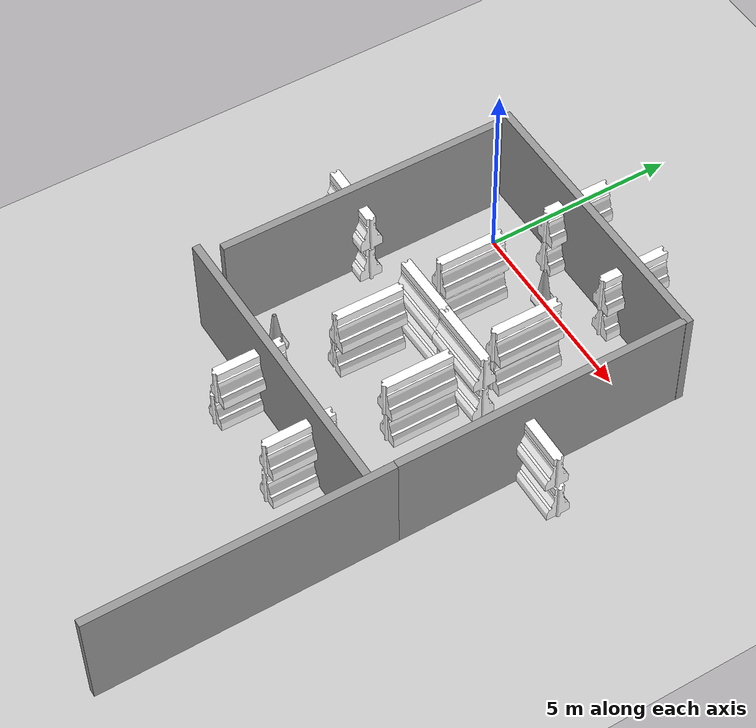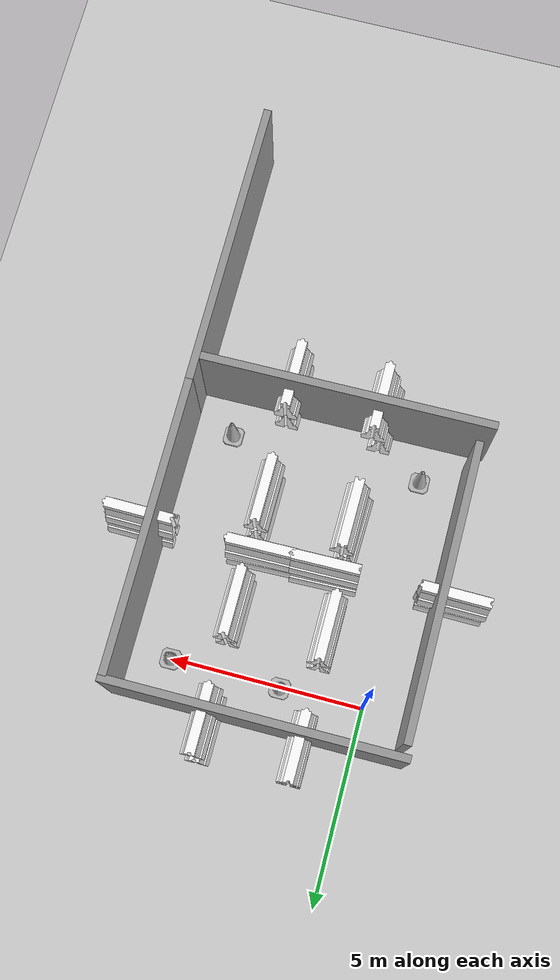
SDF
<sdf version="1.6">
 <world name="vrc_task_1">
  <scene>
   <ambient>0.4 0.4 0.4 1</ambient>
   <background>0.7 0.7 0.7 1</background>
   <shadows>1</shadows>
   <sky><clouds><speed>1</speed></clouds></sky>
  </scene>
  <physics name="default_physics" default="0" type="ode">
   <ode>
    <solver>
     <type>quick</type>
     <iters>10</iters>
     <sor>1</sor>
     <use_dynamic_moi_rescaling>0</use_dynamic_moi_rescaling>
    </solver>
    <constraints>
     <cfm>0</cfm>
     <erp>0.2</erp>
     <contact_max_correcting_vel>100</contact_max_correcting_vel>
     <contact_surface_layer>0.001</contact_surface_layer>
    </constraints>
   </ode>
   <max_step_size>0.004</max_step_size>
   <real_time_factor>1</real_time_factor>
   <real_time_update_rate>250</real_time_update_rate>
  </physics>
  <light name="sun" type="directional">
   <pose>0 0 10 0 -0 0</pose>
   <diffuse>0.8 0.8 0.8 1</diffuse>
   <specular>0.2 0.2 0.2 1</specular>
   <attenuation>
    <range>1000</range>
    <constant>0.9</constant>
    <linear>0.01</linear>
    <quadratic>0.001</quadratic>
   </attenuation>
   <direction>-0.5 0.1 -0.9</direction>
  </light>
  <model name="ground_plane">
   <static>1</static>
   <link name="link">
    <collision name="collision">
     <geometry><plane><normal>0 0 1</normal><size>100 100</size></plane></geometry>
     <surface><friction><ode><mu>100</mu><mu2>50</mu2></ode></friction></surface>
    </collision>
    <visual name="visual">
     <cast_shadows>0</cast_shadows>
     <geometry><plane><normal>0 0 1</normal><size>100 100</size></plane></geometry>
     <material>
      <script><uri>file://media/materials/scripts/gazebo.material</uri><name>Gazebo/Grey</name></script>
     </material>
    </visual>
   </link>
  </model>
  <gravity>0 0 -9.8066</gravity>
  <magnetic_field>6e-06 2.3e-05 -4.2e-05</magnetic_field>
  <atmosphere type="adiabatic"/>
  <spherical_coordinates>
   <surface_model>EARTH_WGS84</surface_model>
   <latitude_deg>0</latitude_deg>
   <longitude_deg>0</longitude_deg>
   <elevation>0</elevation>
   <heading_deg>0</heading_deg>
  </spherical_coordinates>
  <model name="grey_wall">
   <static>1</static>
   <link name="link">
    <pose>0 0 1.4 0 -0 0</pose>
    <collision name="collision"><geometry><box><size>7.5 0.2 2.8</size></box></geometry></collision>
    <visual name="visual">
     <cast_shadows>0</cast_shadows>
     <geometry><box><size>7.5 0.2 2.8</size></box></geometry>
     <material>
      <script>
       <uri>model://grey_wall/materials/scripts</uri>
       <uri>model://grey_wall/materials/textures</uri>
       <name>vrc/grey_wall</name>
      </script>
     </material>
    </visual>
   </link>
   <pose>2.45648 1.09306 0 0 -0 0</pose>
  </model>
  <model name="grey_wall_0">
   <static>1</static>
   <link name="link">
    <pose>0 0 1.4 0 -0 0</pose>
    <collision name="collision"><geometry><box><size>7.5 0.2 2.8</size></box></geometry></collision>
    <visual name="visual">
     <cast_shadows>0</cast_shadows>
     <geometry><box><size>7.5 0.2 2.8</size></box></geometry>
     <material>
      <script>
       <uri>model://grey_wall/materials/scripts</uri>
       <uri>model://grey_wall/materials/textures</uri>
       <name>vrc/grey_wall</name>
      </script>
     </material>
    </visual>
   </link>
   <pose>6.09625 -2.71939 0 0 0 -1.57159</pose>
  </model>
  <model name="grey_wall_2">
   <static>1</static>
   <link name="link">
    <pose>0 0 1.4 0 -0 0</pose>
    <collision name="collision"><geometry><box><size>7.5 0.2 2.8</size></box></geometry></collision>
    <visual name="visual">
     <cast_shadows>0</cast_shadows>
     <geometry><box><size>7.5 0.2 2.8</size></box></geometry>
     <material>
      <script>
       <uri>model://grey_wall/materials/scripts</uri>
       <uri>model://grey_wall/materials/textures</uri>
       <name>vrc/grey_wall</name>
      </script>
     </material>
    </visual>
   </link>
   <pose>2.26246 -7.14335 0 0 0 -3.13251</pose>
  </model>
  <model name="grey_wall_0_clone">
   <static>1</static>
   <link name="link">
    <pose>0 0 1.4 0 -0 0</pose>
    <collision name="collision"><geometry><box><size>7.5 0.2 2.8</size></box></geometry></collision>
    <visual name="visual">
     <cast_shadows>0</cast_shadows>
     <geometry><box><size>7.5 0.2 2.8</size></box></geometry>
     <material>
      <script>
       <uri>model://grey_wall/materials/scripts</uri>
       <uri>model://grey_wall/materials/textures</uri>
       <name>vrc/grey_wall</name>
      </script>
     </material>
    </visual>
   </link>
   <pose>6.09316 -10.2058 0 0 0 -1.57159</pose>
  </model>
  <model name="drc_practice_white_jersey_barrier">
   <static>1</static>
   <link name="link">
    <visual name="visual">
     <geometry>
      <mesh><uri>model://drc_practice_white_jersey_barrier/meshes/jersey_barrier.dae</uri></mesh>
     </geometry>
    </visual>
    <collision name="collision">
     <geometry>
      <mesh><uri>model://drc_practice_white_jersey_barrier/meshes/jersey_barrier.dae</uri></mesh>
     </geometry>
    </collision>
   </link>
   <pose>1.31068 -1.51975 0 0 -0 0</pose>
  </model>
  <model name="drc_practice_white_jersey_barrier_0">
   <static>1</static>
   <link name="link">
    <visual name="visual">
     <geometry>
      <mesh><uri>model://drc_practice_white_jersey_barrier/meshes/jersey_barrier.dae</uri></mesh>
     </geometry>
    </visual>
    <collision name="collision">
     <geometry>
      <mesh><uri>model://drc_practice_white_jersey_barrier/meshes/jersey_barrier.dae</uri></mesh>
     </geometry>
    </collision>
   </link>
   <pose>1.31358 -1.52707 1.04398 0 -0 0</pose>
  </model>
  <model name="drc_practice_white_jersey_barrier_0_clone">
   <static>1</static>
   <link name="link">
    <visual name="visual">
     <geometry>
      <mesh><uri>model://drc_practice_white_jersey_barrier/meshes/jersey_barrier.dae</uri></mesh>
     </geometry>
    </visual>
    <collision name="collision">
     <geometry>
      <mesh><uri>model://drc_practice_white_jersey_barrier/meshes/jersey_barrier.dae</uri></mesh>
     </geometry>
    </collision>
   </link>
   <pose>1.31197 1.43 1.04398 0 -0 0</pose>
  </model>
  <model name="drc_practice_white_jersey_barrier_0_clone_0">
   <static>1</static>
   <link name="link">
    <visual name="visual">
     <geometry>
      <mesh><uri>model://drc_practice_white_jersey_barrier/meshes/jersey_barrier.dae</uri></mesh>
     </geometry>
    </visual>
    <collision name="collision">
     <geometry>
      <mesh><uri>model://drc_practice_white_jersey_barrier/meshes/jersey_barrier.dae</uri></mesh>
     </geometry>
    </collision>
   </link>
   <pose>1.31226 1.43327 0.0011 0 -0 0</pose>
  </model>
  <model name="grey_wall_0_clone_0">
   <static>1</static>
   <link name="link">
    <pose>0 0 1.4 0 -0 0</pose>
    <collision name="collision"><geometry><box><size>7.5 0.2 2.8</size></box></geometry></collision>
    <visual name="visual">
     <cast_shadows>0</cast_shadows>
     <geometry><box><size>7.5 0.2 2.8</size></box></geometry>
     <material>
      <script>
       <uri>model://grey_wall/materials/scripts</uri>
       <uri>model://grey_wall/materials/textures</uri>
       <name>vrc/grey_wall</name>
      </script>
     </material>
    </visual>
   </link>
   <pose>-1.14204 -2.9469 0 0 0 -1.57159</pose>
  </model>
  <model name="drc_practice_white_jersey_barrier_clone">
   <static>1</static>
   <link name="link">
    <visual name="visual">
     <geometry>
      <mesh><uri>model://drc_practice_white_jersey_barrier/meshes/jersey_barrier.dae</uri></mesh>
     </geometry>
    </visual>
    <collision name="collision">
     <geometry>
      <mesh><uri>model://drc_practice_white_jersey_barrier/meshes/jersey_barrier.dae</uri></mesh>
     </geometry>
    </collision>
   </link>
   <pose>1.32896 -4.38359 0 0 -0 3.11661</pose>
  </model>
  <model name="drc_practice_white_jersey_barrier_0_clone_1">
   <static>1</static>
   <link name="link">
    <visual name="visual">
     <geometry>
      <mesh><uri>model://drc_practice_white_jersey_barrier/meshes/jersey_barrier.dae</uri></mesh>
     </geometry>
    </visual>
    <collision name="collision">
     <geometry>
      <mesh><uri>model://drc_practice_white_jersey_barrier/meshes/jersey_barrier.dae</uri></mesh>
     </geometry>
    </collision>
   </link>
   <pose>1.45726 -4.39636 1.04398 0 -0 3.13641</pose>
  </model>
  <model name="drc_practice_white_jersey_barrier_clone_0">
   <static>1</static>
   <link name="link">
    <visual name="visual">
     <geometry>
      <mesh><uri>model://drc_practice_white_jersey_barrier/meshes/jersey_barrier.dae</uri></mesh>
     </geometry>
    </visual>
    <collision name="collision">
     <geometry>
      <mesh><uri>model://drc_practice_white_jersey_barrier/meshes/jersey_barrier.dae</uri></mesh>
     </geometry>
    </collision>
   </link>
   <pose>3.6953 -1.56201 0 0 -0 0</pose>
  </model>
  <model name="drc_practice_white_jersey_barrier_0_clone_2">
   <static>1</static>
   <link name="link">
    <visual name="visual">
     <geometry>
      <mesh><uri>model://drc_practice_white_jersey_barrier/meshes/jersey_barrier.dae</uri></mesh>
     </geometry>
    </visual>
    <collision name="collision">
     <geometry>
      <mesh><uri>model://drc_practice_white_jersey_barrier/meshes/jersey_barrier.dae</uri></mesh>
     </geometry>
    </collision>
   </link>
   <pose>3.69353 -1.55184 1.04398 0 -0 0</pose>
  </model>
  <model name="drc_practice_white_jersey_barrier_0_clone_3">
   <static>1</static>
   <link name="link">
    <visual name="visual">
     <geometry>
      <mesh><uri>model://drc_practice_white_jersey_barrier/meshes/jersey_barrier.dae</uri></mesh>
     </geometry>
    </visual>
    <collision name="collision">
     <geometry>
      <mesh><uri>model://drc_practice_white_jersey_barrier/meshes/jersey_barrier.dae</uri></mesh>
     </geometry>
    </collision>
   </link>
   <pose>6.49781 -3.11342 1.04398 0 -0 1.56571</pose>
  </model>
  <model name="drc_practice_white_jersey_barrier_clone_1">
   <static>1</static>
   <link name="link">
    <visual name="visual">
     <geometry>
      <mesh><uri>model://drc_practice_white_jersey_barrier/meshes/jersey_barrier.dae</uri></mesh>
     </geometry>
    </visual>
    <collision name="collision">
     <geometry>
      <mesh><uri>model://drc_practice_white_jersey_barrier/meshes/jersey_barrier.dae</uri></mesh>
     </geometry>
    </collision>
   </link>
   <pose>6.58064 -3.08078 0 0 -0 1.56662</pose>
  </model>
  <model name="drc_practice_white_jersey_barrier_clone_2">
   <static>1</static>
   <link name="link">
    <visual name="visual">
     <geometry>
      <mesh><uri>model://drc_practice_white_jersey_barrier/meshes/jersey_barrier.dae</uri></mesh>
     </geometry>
    </visual>
    <collision name="collision">
     <geometry>
      <mesh><uri>model://drc_practice_white_jersey_barrier/meshes/jersey_barrier.dae</uri></mesh>
     </geometry>
    </collision>
   </link>
   <pose>3.66993 -4.38001 0 0 -0 0</pose>
  </model>
  <model name="drc_practice_white_jersey_barrier_0_clone_4">
   <static>1</static>
   <link name="link">
    <visual name="visual">
     <geometry>
      <mesh><uri>model://drc_practice_white_jersey_barrier/meshes/jersey_barrier.dae</uri></mesh>
     </geometry>
    </visual>
    <collision name="collision">
     <geometry>
      <mesh><uri>model://drc_practice_white_jersey_barrier/meshes/jersey_barrier.dae</uri></mesh>
     </geometry>
    </collision>
   </link>
   <pose>3.68751 -4.43322 1.04398 0 -0 0</pose>
  </model>
  <model name="drc_practice_white_jersey_barrier_0_clone_2_clone">
   <static>1</static>
   <link name="link">
    <visual name="visual">
     <geometry>
      <mesh><uri>model://drc_practice_white_jersey_barrier/meshes/jersey_barrier.dae</uri></mesh>
     </geometry>
    </visual>
    <collision name="collision">
     <geometry>
      <mesh><uri>model://drc_practice_white_jersey_barrier/meshes/jersey_barrier.dae</uri></mesh>
     </geometry>
    </collision>
   </link>
   <pose>3.71447 1.37987 1.04398 0 -0 0</pose>
  </model>
  <model name="drc_practice_white_jersey_barrier_clone_0_clone">
   <static>1</static>
   <link name="link">
    <visual name="visual">
     <geometry>
      <mesh><uri>model://drc_practice_white_jersey_barrier/meshes/jersey_barrier.dae</uri></mesh>
     </geometry>
    </visual>
    <collision name="collision">
     <geometry>
      <mesh><uri>model://drc_practice_white_jersey_barrier/meshes/jersey_barrier.dae</uri></mesh>
     </geometry>
    </collision>
   </link>
   <pose>3.65663 1.47149 0 0 -0 0</pose>
  </model>
  <model name="drc_practice_white_jersey_barrier_clone_clone">
   <static>1</static>
   <link name="link">
    <visual name="visual">
     <geometry>
      <mesh><uri>model://drc_practice_white_jersey_barrier/meshes/jersey_barrier.dae</uri></mesh>
     </geometry>
    </visual>
    <collision name="collision">
     <geometry>
      <mesh><uri>model://drc_practice_white_jersey_barrier/meshes/jersey_barrier.dae</uri></mesh>
     </geometry>
    </collision>
   </link>
   <pose>3.41047 -3.06161 0 0 -0 1.60018</pose>
  </model>
  <model name="drc_practice_white_jersey_barrier_0_clone_1_clone">
   <static>1</static>
   <link name="link">
    <visual name="visual">
     <geometry>
      <mesh><uri>model://drc_practice_white_jersey_barrier/meshes/jersey_barrier.dae</uri></mesh>
     </geometry>
    </visual>
    <collision name="collision">
     <geometry>
      <mesh><uri>model://drc_practice_white_jersey_barrier/meshes/jersey_barrier.dae</uri></mesh>
     </geometry>
    </collision>
   </link>
   <pose>3.38412 -3.01768 1.04398 0 -0 1.58859</pose>
  </model>
  <model name="drc_practice_white_jersey_barrier_0_clone_1_clone_0">
   <static>1</static>
   <link name="link">
    <visual name="visual">
     <geometry>
      <mesh><uri>model://drc_practice_white_jersey_barrier/meshes/jersey_barrier.dae</uri></mesh>
     </geometry>
    </visual>
    <collision name="collision">
     <geometry>
      <mesh><uri>model://drc_practice_white_jersey_barrier/meshes/jersey_barrier.dae</uri></mesh>
     </geometry>
    </collision>
   </link>
   <pose>3.71545 -7.48844 1.04398 0 -0 0.003969</pose>
  </model>
  <model name="drc_practice_white_jersey_barrier_clone_2_clone">
   <static>1</static>
   <link name="link">
    <visual name="visual">
     <geometry>
      <mesh><uri>model://drc_practice_white_jersey_barrier/meshes/jersey_barrier.dae</uri></mesh>
     </geometry>
    </visual>
    <collision name="collision">
     <geometry>
      <mesh><uri>model://drc_practice_white_jersey_barrier/meshes/jersey_barrier.dae</uri></mesh>
     </geometry>
    </collision>
   </link>
   <pose>3.70914 -7.53489 0 0 -0 0</pose>
  </model>
  <model name="drc_practice_white_jersey_barrier_0_clone_1_clone_0_clone">
   <static>1</static>
   <link name="link">
    <visual name="visual">
     <geometry>
      <mesh><uri>model://drc_practice_white_jersey_barrier/meshes/jersey_barrier.dae</uri></mesh>
     </geometry>
    </visual>
    <collision name="collision">
     <geometry>
      <mesh><uri>model://drc_practice_white_jersey_barrier/meshes/jersey_barrier.dae</uri></mesh>
     </geometry>
    </collision>
   </link>
   <pose>1.42546 -7.46389 1.04398 0 -0 0.003969</pose>
  </model>
  <model name="drc_practice_white_jersey_barrier_clone_2_clone_clone">
   <static>1</static>
   <link name="link">
    <visual name="visual">
     <geometry>
      <mesh><uri>model://drc_practice_white_jersey_barrier/meshes/jersey_barrier.dae</uri></mesh>
     </geometry>
    </visual>
    <collision name="collision">
     <geometry>
      <mesh><uri>model://drc_practice_white_jersey_barrier/meshes/jersey_barrier.dae</uri></mesh>
     </geometry>
    </collision>
   </link>
   <pose>1.21448 -7.48177 0 0 -0 0</pose>
  </model>
  <model name="drc_practice_white_jersey_barrier_0_clone_3_clone">
   <static>1</static>
   <link name="link">
    <visual name="visual">
     <geometry>
      <mesh><uri>model://drc_practice_white_jersey_barrier/meshes/jersey_barrier.dae</uri></mesh>
     </geometry>
    </visual>
    <collision name="collision">
     <geometry>
      <mesh><uri>model://drc_practice_white_jersey_barrier/meshes/jersey_barrier.dae</uri></mesh>
     </geometry>
    </collision>
   </link>
   <pose>-1.51906 -3.04235 1.04398 0 -0 1.56571</pose>
  </model>
  <model name="drc_practice_white_jersey_barrier_clone_1_clone">
   <static>1</static>
   <link name="link">
    <visual name="visual">
     <geometry>
      <mesh><uri>model://drc_practice_white_jersey_barrier/meshes/jersey_barrier.dae</uri></mesh>
     </geometry>
    </visual>
    <collision name="collision">
     <geometry>
      <mesh><uri>model://drc_practice_white_jersey_barrier/meshes/jersey_barrier.dae</uri></mesh>
     </geometry>
    </collision>
   </link>
   <pose>-1.50911 -3.08678 0 0 -0 1.56662</pose>
  </model>
  <model name="drc_practice_white_jersey_barrier_clone_clone_clone">
   <static>1</static>
   <link name="link">
    <visual name="visual">
     <geometry>
      <mesh><uri>model://drc_practice_white_jersey_barrier/meshes/jersey_barrier.dae</uri></mesh>
     </geometry>
    </visual>
    <collision name="collision">
     <geometry>
      <mesh><uri>model://drc_practice_white_jersey_barrier/meshes/jersey_barrier.dae</uri></mesh>
     </geometry>
    </collision>
   </link>
   <pose>1.74581 -3.00534 0 0 -0 1.60018</pose>
  </model>
  <model name="drc_practice_white_jersey_barrier_0_clone_1_clone_clone">
   <static>1</static>
   <link name="link">
    <visual name="visual">
     <geometry>
      <mesh><uri>model://drc_practice_white_jersey_barrier/meshes/jersey_barrier.dae</uri></mesh>
     </geometry>
    </visual>
    <collision name="collision">
     <geometry>
      <mesh><uri>model://drc_practice_white_jersey_barrier/meshes/jersey_barrier.dae</uri></mesh>
     </geometry>
    </collision>
   </link>
   <pose>1.74581 -3.02911 1.04398 0 -0 1.58859</pose>
  </model>
  <model name="Construction Cone">
   <link name="link">
    <collision name="collision">
     <geometry>
      <mesh><scale>10 10 10</scale><uri>model://construction_cone/meshes/construction_cone.dae</uri></mesh>
     </geometry>
    </collision>
    <visual name="visual">
     <geometry>
      <mesh><scale>10 10 10</scale><uri>model://construction_cone/meshes/construction_cone.dae</uri></mesh>
     </geometry>
    </visual>
    <inertial>
     <inertia><ixx>1</ixx><ixy>0</ixy><ixz>0</ixz><iyy>1</iyy><iyz>0</iyz><izz>1</izz></inertia>
     <mass>1</mass>
    </inertial>
   </link>
   <pose>2.13476 0.026314 4e-06 -1.1e-05 -5e-06 0</pose>
  </model>
  <model name="Construction Cone_clone">
   <link name="link">
    <collision name="collision">
     <geometry>
      <mesh><scale>10 10 10</scale><uri>model://construction_cone/meshes/construction_cone.dae</uri></mesh>
     </geometry>
    </collision>
    <visual name="visual">
     <geometry>
      <mesh><scale>10 10 10</scale><uri>model://construction_cone/meshes/construction_cone.dae</uri></mesh>
     </geometry>
    </visual>
    <inertial>
     <inertia><ixx>1</ixx><ixy>0</ixy><ixz>0</ixz><iyy>1</iyy><iyz>0</iyz><izz>1</izz></inertia>
     <mass>1</mass>
    </inertial>
   </link>
   <pose>4.99755 -0.001991 4e-06 -1.1e-05 -5e-06 0</pose>
  </model>
  <model name="Construction Cone_clone_0">
   <link name="link">
    <collision name="collision">
     <geometry>
      <mesh><scale>10 10 10</scale><uri>model://construction_cone/meshes/construction_cone.dae</uri></mesh>
     </geometry>
    </collision>
    <visual name="visual">
     <geometry>
      <mesh><scale>10 10 10</scale><uri>model://construction_cone/meshes/construction_cone.dae</uri></mesh>
     </geometry>
    </visual>
    <inertial>
     <inertia><ixx>1</ixx><ixy>0</ixy><ixz>0</ixz><iyy>1</iyy><iyz>0</iyz><izz>1</izz></inertia>
     <mass>1</mass>
    </inertial>
   </link>
   <pose>4.99011 -6.07168 4e-06 -1.1e-05 -5e-06 0</pose>
  </model>
  <model name="Construction Cone_clone_1">
   <link name="link">
    <collision name="collision">
     <geometry>
      <mesh><scale>10 10 10</scale><uri>model://construction_cone/meshes/construction_cone.dae</uri></mesh>
     </geometry>
    </collision>
    <visual name="visual">
     <geometry>
      <mesh><scale>10 10 10</scale><uri>model://construction_cone/meshes/construction_cone.dae</uri></mesh>
     </geometry>
    </visual>
    <inertial>
     <inertia><ixx>1</ixx><ixy>0</ixy><ixz>0</ixz><iyy>1</iyy><iyz>0</iyz><izz>1</izz></inertia>
     <mass>1</mass>
    </inertial>
   </link>
   <pose>-0.034128 -6.05326 4e-06 -1.1e-05 -5e-06 0</pose>
  </model>
 </world>
</sdf>
